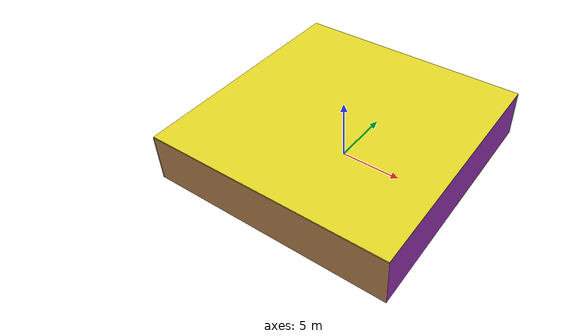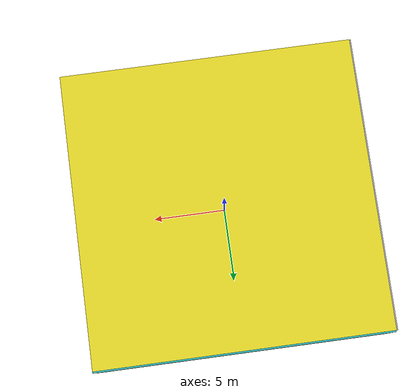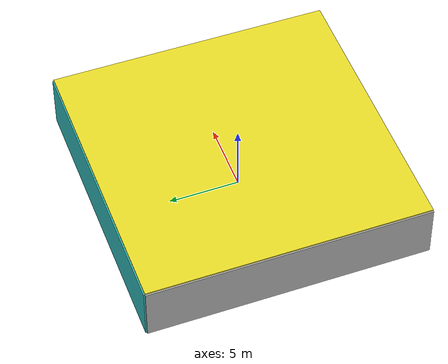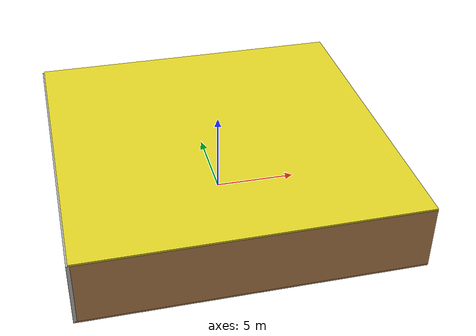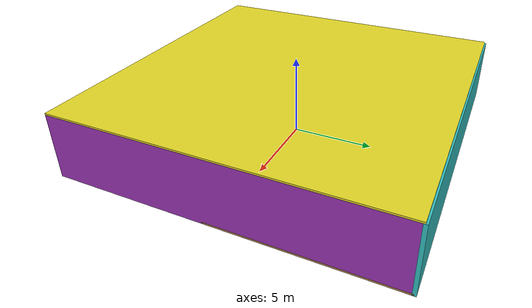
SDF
<sdf version="1.4">
 <world name="default">
  <physics type="ode">
   <max_step_size>0.001</max_step_size>
   <real_time_factor>1</real_time_factor>
   <real_time_update_rate>1000</real_time_update_rate>
   <gravity>0 0 -9.8</gravity>
  </physics>
  <scene><ambient>0.4 0.4 0.4 1</ambient><background>0.7 0.7 0.7 1</background><shadows>1</shadows></scene>
  <model name="Surrounding">
   <static>1</static>
   <link name="Ceiling">
    <collision name="Ceiling_Collision"><geometry><box><size>20 20 0.1</size></box></geometry></collision>
    <visual name="Ceiling_Visual">
     <geometry><box><size>20 20 0.1</size></box></geometry>
     <material>
      <script><uri>file://media/materials/scripts/gazebo.material</uri><name>Gazebo/Yellow</name></script>
     </material>
    </visual>
    <pose>0 0 4.05 0 0 0</pose>
   </link>
   <link name="Wall_South">
    <collision name="Wall_South_Collision">
     <geometry><box><size>20 0 4</size></box></geometry>
     <pose>0 0 2 0 -0 0</pose>
    </collision>
    <visual name="Wall_South_Visual">
     <pose>0 0 2 0 -0 0</pose>
     <geometry><box><size>20 0 4</size></box></geometry>
     <material>
      <script><uri>file://media/materials/scripts/gazebo.material</uri><name>Gazebo/WoodFloor</name></script>
     </material>
    </visual>
    <velocity_decay><linear>0</linear><angular>0</angular></velocity_decay>
    <pose>0 -10 0 0 -0 0</pose>
   </link>
   <link name="Wall_East">
    <collision name="Wall_21_Collision">
     <geometry><box><size>20 0 4</size></box></geometry>
     <pose>0 0 2 0 -0 0</pose>
    </collision>
    <visual name="Wall_21_Visual">
     <pose>0 0 2 0 -0 0</pose>
     <geometry><box><size>20 0 4</size></box></geometry>
     <material>
      <script><uri>file://media/materials/scripts/gazebo.material</uri><name>Gazebo/Purple</name></script>
     </material>
    </visual>
    <velocity_decay><linear>0</linear><angular>0</angular></velocity_decay>
    <pose>10 0 0 0 -0 1.5708</pose>
   </link>
   <link name="Wall_North">
    <collision name="Wall_22_Collision">
     <geometry><box><size>20 0.2 4</size></box></geometry>
     <pose>0 0 2 0 -0 0</pose>
    </collision>
    <visual name="Wall_22_Visual">
     <pose>0 0 2 0 -0 0</pose>
     <geometry><box><size>20 0.2 4</size></box></geometry>
     <material>
      <script><uri>file://media/materials/scripts/gazebo.material</uri><name>Gazebo/Turquoise</name></script>
     </material>
    </visual>
    <velocity_decay><linear>0</linear><angular>0</angular></velocity_decay>
    <pose>0 10 0 0 -0 0</pose>
   </link>
   <link name="Wall_West">
    <collision name="Wall_23_Collision">
     <geometry><box><size>20 0.2 4</size></box></geometry>
     <pose>0 0 2 0 -0 0</pose>
    </collision>
    <visual name="Wall_23_Visual">
     <pose>0 0 2 0 -0 0</pose>
     <geometry><box><size>20 0.2 4</size></box></geometry>
     <material>
      <script><uri>file://media/materials/scripts/gazebo.material</uri><name>Gazebo/LightOn</name></script>
     </material>
    </visual>
    <velocity_decay><linear>0</linear><angular>0</angular></velocity_decay>
    <pose>-10 0 0 0 0 -1.5708</pose>
   </link>
   <link name="Ground_link">
    <collision name="collision">
     <pose>0 0 .05 0 -0 0</pose>
     <geometry><box><size>20 20 0.1</size></box></geometry>
    </collision>
    <visual name="visual">
     <pose>0 0 .05 0 -0 0</pose>
     <geometry><box><size>20 20 0.1</size></box></geometry>
     <material>
      <script><uri>file://media/materials/scripts/gazebo.material</uri><name>Gazebo/Wood</name></script>
     </material>
    </visual>
   </link>
   <static>1</static>
  </model>
  <spherical_coordinates>
   <surface_model>EARTH_WGS84</surface_model>
   <latitude_deg>0</latitude_deg>
   <longitude_deg>0</longitude_deg>
   <elevation>0</elevation>
   <heading_deg>0</heading_deg>
  </spherical_coordinates>
  <light name="lightball_0" type="diffuse">
   <diffuse>0.8 0.8 0.8 1</diffuse>
   <specular>0.2 0.2 0.2 1</specular>
   <attenuation>
    <range>100</range>
    <constant>0.7</constant>
    <linear>0.01</linear>
    <quadratic>0.001</quadratic>
   </attenuation>
   <direction>-0.5 0.1 -0.9</direction>
   <pose>-2.57107411492 0.0539238730481 0.574774533235 0 0 0</pose>
  </light>
  <light name="lightball_1" type="diffuse">
   <diffuse>0.8 0.8 0.8 1</diffuse>
   <specular>0.2 0.2 0.2 1</specular>
   <attenuation>
    <range>100</range>
    <constant>0.7</constant>
    <linear>0.01</linear>
    <quadratic>0.001</quadratic>
   </attenuation>
   <direction>-0.5 0.1 -0.9</direction>
   <pose>-2.06349050627 1.81055202269 2.60264054998 0 0 0</pose>
  </light>
  <light name="lightball_2" type="diffuse">
   <diffuse>0.8 0.8 0.8 1</diffuse>
   <specular>0.2 0.2 0.2 1</specular>
   <attenuation>
    <range>100</range>
    <constant>0.7</constant>
    <linear>0.01</linear>
    <quadratic>0.001</quadratic>
   </attenuation>
   <direction>-0.5 0.1 -0.9</direction>
   <pose>-3.84301677924 -5.76139441115 3.27269588971 0 0 0</pose>
  </light>
  <light name="lightball_3" type="diffuse">
   <diffuse>0.8 0.8 0.8 1</diffuse>
   <specular>0.2 0.2 0.2 1</specular>
   <attenuation>
    <range>100</range>
    <constant>0.7</constant>
    <linear>0.01</linear>
    <quadratic>0.001</quadratic>
   </attenuation>
   <direction>-0.5 0.1 -0.9</direction>
   <pose>3.20793836698 9.40950172264 2.39246982382 0 0 0</pose>
  </light>
  <light name="lightball_4" type="diffuse">
   <diffuse>0.8 0.8 0.8 1</diffuse>
   <specular>0.2 0.2 0.2 1</specular>
   <attenuation>
    <range>100</range>
    <constant>0.7</constant>
    <linear>0.01</linear>
    <quadratic>0.001</quadratic>
   </attenuation>
   <direction>-0.5 0.1 -0.9</direction>
   <pose>0.405906826337 7.60315793308 3.87278489859 0 0 0</pose>
  </light>
  <light name="lightball_5" type="diffuse">
   <diffuse>0.8 0.8 0.8 1</diffuse>
   <specular>0.2 0.2 0.2 1</specular>
   <attenuation>
    <range>100</range>
    <constant>0.7</constant>
    <linear>0.01</linear>
    <quadratic>0.001</quadratic>
   </attenuation>
   <direction>-0.5 0.1 -0.9</direction>
   <pose>-7.84900923356 -9.89021369121 0.538686987662 0 0 0</pose>
  </light>
  <light name="lightball_6" type="diffuse">
   <diffuse>0.8 0.8 0.8 1</diffuse>
   <specular>0.2 0.2 0.2 1</specular>
   <attenuation>
    <range>100</range>
    <constant>0.7</constant>
    <linear>0.01</linear>
    <quadratic>0.001</quadratic>
   </attenuation>
   <direction>-0.5 0.1 -0.9</direction>
   <pose>2.8088363927 -7.11242139644 0.519994847397 0 0 0</pose>
  </light>
  <light name="lightball_7" type="diffuse">
   <diffuse>0.8 0.8 0.8 1</diffuse>
   <specular>0.2 0.2 0.2 1</specular>
   <attenuation>
    <range>100</range>
    <constant>0.7</constant>
    <linear>0.01</linear>
    <quadratic>0.001</quadratic>
   </attenuation>
   <direction>-0.5 0.1 -0.9</direction>
   <pose>-8.43806721217 -1.00869225763 0.671018450344 0 0 0</pose>
  </light>
  <light name="lightball_8" type="diffuse">
   <diffuse>0.8 0.8 0.8 1</diffuse>
   <specular>0.2 0.2 0.2 1</specular>
   <attenuation>
    <range>100</range>
    <constant>0.7</constant>
    <linear>0.01</linear>
    <quadratic>0.001</quadratic>
   </attenuation>
   <direction>-0.5 0.1 -0.9</direction>
   <pose>-8.6270519405 -9.68512313655 1.03939882221 0 0 0</pose>
  </light>
  <include><uri>model://table</uri><pose>3.94284970046 4.43554414915 0 0 0 1.06459578713</pose></include>
  <include>
   <uri>model://construction_cone</uri>
   <pose>6.9573239635 -7.0907668083 0 0 0 1.33701218961</pose>
  </include>
  <include><uri>model://cabinet</uri><pose>6.77000196983 -4.67704537641 0 0 0 2.37277732397</pose></include>
  <include>
   <uri>model://robocup_3Dsim_goal</uri>
   <pose>7.11252772985 4.35062280376 0 0 0 2.15664866742</pose>
  </include>
 </world>
</sdf>

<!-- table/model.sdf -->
<sdf version="1.5">
  <model name="table">
    <static>true</static>
    <link name="link">
      <collision name="surface">
        <pose>0 0 1.0 0 0 0</pose>
        <geometry>
          <box>
            <size>1.5 0.8 0.03</size>
          </box>
        </geometry>
        <surface>
          <friction>
            <ode>
              <mu>0.6</mu>
              <mu2>0.6</mu2>
            </ode>
          </friction>
        </surface>
      </collision>
      <visual name="visual1">
        <pose>0 0 1.0 0 0 0</pose>
        <geometry>
          <box>
            <size>1.5 0.8 0.03</size>
          </box>
        </geometry>
        <material>
          <script>
            <uri>model://media/materials/scripts/gazebo.material</uri>
            <name>Gazebo/Wood</name>
          </script>
        </material>
      </visual>
      <collision name="front_left_leg">
        <pose>0.68 0.38 0.5 0 0 0</pose>
        <geometry>
          <cylinder>
            <radius>0.02</radius>
            <length>1.0</length>
          </cylinder>
        </geometry>
      </collision>
      <visual name="front_left_leg">
        <pose>0.68 0.38 0.5 0 0 0</pose>
        <geometry>
          <cylinder>
            <radius>0.02</radius>
            <length>1.0</length>
          </cylinder>
        </geometry>
        <material>
          <script>
            <uri>model://media/materials/scripts/gazebo.material</uri>
            <name>Gazebo/Grey</name>
          </script>
        </material>
      </visual>
      <collision name="front_right_leg">
        <pose>0.68 -0.38 0.5 0 0 0</pose>
        <geometry>
          <cylinder>
            <radius>0.02</radius>
            <length>1.0</length>
          </cylinder>
        </geometry>
      </collision>
      <visual name="front_right_leg">
        <pose>0.68 -0.38 0.5 0 0 0</pose>
        <geometry>
          <cylinder>
            <radius>0.02</radius>
            <length>1.0</length>
          </cylinder>
        </geometry>
        <material>
          <script>
            <uri>model://media/materials/scripts/gazebo.material</uri>
            <name>Gazebo/Grey</name>
          </script>
        </material>
      </visual>
      <collision name="back_right_leg">
        <pose>-0.68 -0.38 0.5 0 0 0</pose>
        <geometry>
          <cylinder>
            <radius>0.02</radius>
            <length>1.0</length>
          </cylinder>
        </geometry>
      </collision>
      <visual name="back_right_leg">
        <pose>-0.68 -0.38 0.5 0 0 0</pose>
        <geometry>
          <cylinder>
            <radius>0.02</radius>
            <length>1.0</length>
          </cylinder>
        </geometry>
        <material>
          <script>
            <uri>model://media/materials/scripts/gazebo.material</uri>
            <name>Gazebo/Grey</name>
          </script>
        </material>
      </visual>
      <collision name="back_left_leg">
        <pose>-0.68 0.38 0.5 0 0 0</pose>
        <geometry>
          <cylinder>
            <radius>0.02</radius>
            <length>1.0</length>
          </cylinder>
        </geometry>
      </collision>
      <visual name="back_left_leg">
        <pose>-0.68 0.38 0.5 0 0 0</pose>
        <geometry>
          <cylinder>
            <radius>0.02</radius>
            <length>1.0</length>
          </cylinder>
        </geometry>
        <material>
          <script>
            <uri>model://media/materials/scripts/gazebo.material</uri>
            <name>Gazebo/Grey</name>
          </script>
        </material>
      </visual>
    </link>
  </model>
</sdf>

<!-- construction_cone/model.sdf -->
<sdf version="1.5">
  <model name="Construction Cone">
    <link name="link">
      <collision name="collision">
        <geometry>
          <mesh>
            <scale>10 10 10</scale>
            <uri>file://isr-testbed/construction_cone/meshes/construction_cone.dae</uri>
          </mesh>
        </geometry>
      </collision>
      <visual name="visual">
        <geometry>
          <mesh>
            <scale>10 10 10</scale>
            <uri>file://isr-testbed/construction_cone/meshes/construction_cone.dae</uri>
          </mesh>
        </geometry>
      </visual>
    </link>
  </model>
</sdf>

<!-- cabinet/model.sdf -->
<sdf version="1.5">
  <model name="cabinet">
    <static>true</static>
    <link name="cabinet_bottom_plate">
      <inertial>
        <pose>0 0 -1 0 0 0</pose>
        <inertia>
          <ixx>2.050000</ixx>
          <ixy>0</ixy>
          <ixz>0</ixz>
          <iyy>2.050000</iyy>
          <iyz>0</iyz>
          <izz>2.050000</izz>
        </inertia>
        <mass>25.000000</mass>
      </inertial>
      <collision name="cabinet_bottom_plate_geom">
        <pose>0 0 0.010000 0 0 0</pose>
        <geometry>
          <box>
            <size>0.450000 0.450000 0.020000</size>
          </box>
        </geometry>
      </collision>
      <visual name="cabinet_bottom_plate_geom_visual">
        <pose>0 0 0.010000 0 0 0</pose>
        <geometry>
          <box>
            <size>0.450000 0.450000 0.020000</size>
          </box>
        </geometry>
        <material>
          <script>
            <uri>model://media/materials/scripts/gazebo.material</uri>
            <name>Gazebo/Wood</name>
          </script>
        </material>
      </visual>
      <collision name="cabinet_bottom_plate_geom_cabinet_back_plate">
        <pose>0.235000 0 0.510000 0 0 0</pose>
        <geometry>
          <box>
            <size>0.020000 0.450000 1.020000</size>
          </box>
        </geometry>
      </collision>
      <visual name="cabinet_bottom_plate_geom_cabinet_back_plate_visual">
        <pose>0.235000 0 0.510000 0 0 0</pose>
        <geometry>
          <box>
            <size>0.020000 0.450000 1.020000</size>
          </box>
        </geometry>
        <material>
          <script>
            <uri>model://media/materials/scripts/gazebo.material</uri>
            <name>Gazebo/Wood</name>
          </script>
        </material>
      </visual>
      <collision name="cabinet_bottom_plate_geom_cabinet_left_plate">
        <pose>0 0.235000 0.510000 0 0 0</pose>
        <geometry>
          <box>
            <size>0.450000 0.020000 1.020000</size>
          </box>
        </geometry>
      </collision>
      <visual name="cabinet_bottom_plate_geom_cabinet_left_plate_visual">
        <pose>0 0.235000 0.510000 0 0 0</pose>
        <geometry>
          <box>
            <size>0.450000 0.020000 1.020000</size>
          </box>
        </geometry>
        <material>
          <script>
            <uri>model://media/materials/scripts/gazebo.material</uri>
            <name>Gazebo/Wood</name>
          </script>
        </material>
      </visual>
      <collision name="cabinet_bottom_plate_geom_cabinet_middle_plate">
        <pose>0 0 0.510000 0 0 0</pose>
        <geometry>
          <box>
            <size>0.450000 0.450000 0.020000</size>
          </box>
        </geometry>
      </collision>
      <visual name="cabinet_bottom_plate_geom_cabinet_middle_plate_visual">
        <pose>0 0 0.510000 0 0 0</pose>
        <geometry>
          <box>
            <size>0.450000 0.450000 0.020000</size>
          </box>
        </geometry>
        <material>
          <script>
            <uri>model://media/materials/scripts/gazebo.material</uri>
            <name>Gazebo/Wood</name>
          </script>
        </material>
      </visual>
      <collision name="cabinet_bottom_plate_geom_cabinet_right_plate">
        <pose>0 -0.235000 0.510000 0 0 0</pose>
        <geometry>
          <box>
            <size>0.450000 0.020000 1.020000</size>
          </box>
        </geometry>
      </collision>
      <visual name="cabinet_bottom_plate_geom_cabinet_right_plate_visual">
        <pose>0 -0.235000 0.510000 0 0 0</pose>
        <geometry>
          <box>
            <size>0.450000 0.020000 1.020000</size>
          </box>
        </geometry>
        <material>
          <script>
            <uri>model://media/materials/scripts/gazebo.material</uri>
            <name>Gazebo/Wood</name>
          </script>
        </material>
      </visual>
      <collision name="cabinet_bottom_plate_geom_cabinet_top_plate">
        <pose>0 0 1.010000 0 0 0</pose>
        <geometry>
          <box>
            <size>0.450000 0.450000 0.020000</size>
          </box>
        </geometry>
      </collision>
      <visual name="cabinet_bottom_plate_geom_cabinet_top_plate_visual">
        <pose>0 0 1.010000 0 0 0</pose>
        <geometry>
          <box>
            <size>0.450000 0.450000 0.020000</size>
          </box>
        </geometry>
        <material>
          <script>
            <uri>model://media/materials/scripts/gazebo.material</uri>
            <name>Gazebo/Wood</name>
          </script>
        </material>
      </visual>
    </link>
  </model>
</sdf>

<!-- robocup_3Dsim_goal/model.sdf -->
<sdf version="1.5">
  <model name="robocup_3d_goal">
    <static>true</static>
    <link name="left_post">
      <pose>0 1.05 0.45 0 0 0</pose>
      <collision name="collision">
        <geometry>
          <cylinder>
            <radius>0.05</radius>
            <length>0.9</length>
          </cylinder>
        </geometry>
      </collision>
      <visual name="visual">
        <geometry>
          <cylinder>
            <radius>0.05</radius>
            <length>0.9</length>
          </cylinder>
        </geometry>
        <material>
          <script>
            <uri>file://media/materials/scripts/gazebo.material</uri>
            <name>Gazebo/ZincYellow</name>
          </script>
        </material>
      </visual>
    </link>
    <link name="left_support_horiz_lower">
      <pose>0.30 1.05 0.01 0 0 0</pose>
      <collision name="collision">
        <geometry>
          <box>
            <size>0.50 0.02 0.02</size>
          </box>
        </geometry>
      </collision>
      <visual name="visual">
        <geometry>
          <box>
            <size>0.50 0.02 0.02</size>
          </box>
        </geometry>
        <material>
          <script>
            <uri>file://media/materials/scripts/gazebo.material</uri>
            <name>Gazebo/White</name>
          </script>
        </material>
      </visual>
    </link>
    <link name="left_support_horiz_upper">
      <pose>0.30 1.05 0.79 0 0 0</pose>
      <collision name="collision">
        <geometry>
          <box>
            <size>0.50 0.02 0.02</size>
          </box>
        </geometry>
      </collision>
      <visual name="visual">
        <geometry>
          <box>
            <size>0.50 0.02 0.02</size>
          </box>
        </geometry>
        <material>
          <script>
            <uri>file://media/materials/scripts/gazebo.material</uri>
            <name>Gazebo/White</name>
          </script>
        </material>
      </visual>
    </link>
    <link name="left_support_vertical">
      <pose>0.56 1.05 0.4 0 1.5708 0</pose>
      <collision name="collision">
        <geometry>
          <box>
            <size>0.80 0.02 0.02</size>
          </box>
        </geometry>
      </collision>
      <visual name="visual">
        <geometry>
          <box>
            <size>0.80 0.02 0.02</size>
          </box>
        </geometry>
        <material>
          <script>
            <uri>file://media/materials/scripts/gazebo.material</uri>
            <name>Gazebo/White</name>
          </script>
        </material>
      </visual>
    </link>
    <link name="right_support_horiz_lower">
      <pose>0.30 -1.05 0.01 0 0 0</pose>
      <collision name="collision">
        <geometry>
          <box>
            <size>0.50 0.02 0.02</size>
          </box>
        </geometry>
      </collision>
      <visual name="visual">
        <geometry>
          <box>
            <size>0.50 0.02 0.02</size>
          </box>
        </geometry>
        <material>
          <script>
            <uri>file://media/materials/scripts/gazebo.material</uri>
            <name>Gazebo/White</name>
          </script>
        </material>
      </visual>
    </link>
    <link name="right_support_horiz_upper">
      <pose>0.30 -1.05 0.79 0 0 0</pose>
      <collision name="collision">
        <geometry>
          <box>
            <size>0.50 0.02 0.02</size>
          </box>
        </geometry>
      </collision>
      <visual name="visual">
        <geometry>
          <box>
            <size>0.50 0.02 0.02</size>
          </box>
        </geometry>
        <material>
          <script>
            <uri>file://media/materials/scripts/gazebo.material</uri>
            <name>Gazebo/White</name>
          </script>
        </material>
      </visual>
    </link>
    <link name="right_support_vertical">
      <pose>0.56 -1.05 0.4 0 1.5708 0</pose>
      <collision name="collision">
        <geometry>
          <box>
            <size>0.80 0.02 0.02</size>
          </box>
        </geometry>
      </collision>
      <visual name="visual">
        <geometry>
          <box>
            <size>0.80 0.02 0.02</size>
          </box>
        </geometry>
        <material>
          <script>
            <uri>file://media/materials/scripts/gazebo.material</uri>
            <name>Gazebo/White</name>
          </script>
        </material>
      </visual>
    </link>
    <link name="center_support_horiz_lower">
      <pose>0.56 0 0.01 0 1.5708 0</pose>
      <collision name="collision">
        <geometry>
          <box>
            <size>0.02 2.08 0.02</size>
          </box>
        </geometry>
      </collision>
      <visual name="visual">
        <geometry>
          <box>
            <size>0.02 2.08 0.02</size>
          </box>
        </geometry>
        <material>
          <script>
            <uri>file://media/materials/scripts/gazebo.material</uri>
            <name>Gazebo/White</name>
          </script>
        </material>
      </visual>
    </link>
    <link name="center_support_horiz_upper">
      <pose>0.56 0 0.79 0 1.5708 0</pose>
      <collision name="collision">
        <geometry>
          <box>
            <size>0.02 2.08 0.02</size>
          </box>
        </geometry>
      </collision>
      <visual name="visual">
        <geometry>
          <box>
            <size>0.02 2.08 0.02</size>
          </box>
        </geometry>
        <material>
          <script>
            <uri>file://media/materials/scripts/gazebo.material</uri>
            <name>Gazebo/White</name>
          </script>
        </material>
      </visual>
    </link>
    <link name="right_post">
      <pose>0 -1.05 0.45 0 0 0</pose>
      <collision name="collision">
        <geometry>
          <cylinder>
            <radius>0.05</radius>
            <length>0.9</length>
          </cylinder>
        </geometry>
      </collision>
      <visual name="visual">
        <geometry>
          <cylinder>
            <radius>0.05</radius>
            <length>0.9</length>
          </cylinder>
        </geometry>
        <material>
          <script>
            <uri>file://media/materials/scripts/gazebo.material</uri>
            <name>Gazebo/ZincYellow</name>
          </script>
        </material>
      </visual>
    </link>
    <link name="crossbar">
      <pose>0 0 0.85 1.57 1.57 0</pose>
      <collision name="collision">
        <geometry>
          <cylinder>
            <radius>0.05</radius>
            <length>2.0</length>
          </cylinder>
        </geometry>
      </collision>
      <visual name="visual">
        <geometry>
          <cylinder>
            <radius>0.05</radius>
            <length>2.0</length>
          </cylinder>
        </geometry>
        <material>
          <script>
            <uri>file://media/materials/scripts/gazebo.material</uri>
            <name>Gazebo/ZincYellow</name>
          </script>
        </material>
      </visual>
    </link>
    <link name="center_net">
      <pose>0.56 0 0.40 0 0 0</pose>
      <collision name="collision">
        <geometry>
          <box>
            <size>0.01 2.1 0.80</size>
          </box>
        </geometry>
      </collision>
      <visual name="visual">
        <geometry>
          <box>
            <size>0.01 2.1 0.80</size>
          </box>
        </geometry>
        <material>
          <script>
            <uri>model://../model_source/models/robocup09_spl_field/materials/scripts/</uri>
            <uri>model://../model_source/models/robocup09_spl_field/materials/textures/</uri>
            <name>RoboCup/Net</name>
          </script>
        </material>
      </visual>
    </link>
    <link name="left_net">
      <pose>0.30 1.05 0.40 0 0 0</pose>
      <collision name="collision">
        <geometry>
          <box>
            <size>0.50 0.01 0.76</size>
          </box>
        </geometry>
      </collision>
      <visual name="visual">
        <geometry>
          <box>
            <size>0.50 0.01 0.76</size>
          </box>
        </geometry>
        <material>
          <script>
            <uri>model://../model_source/models/robocup09_spl_field/materials/scripts/</uri>
            <uri>model://../model_source/models/robocup09_spl_field/materials/textures/</uri>
            <name>RoboCup/Net</name>
          </script>
        </material>
      </visual>
    </link>
    <link name="right_net">
      <pose>0.30 -1.05 0.40 0 0 0</pose>
      <collision name="collision">
        <geometry>
          <box>
            <size>0.50 0.01 0.76</size>
          </box>
        </geometry>
      </collision>
      <visual name="visual">
        <geometry>
          <box>
            <size>0.50 0.01 0.76</size>
          </box>
        </geometry>
        <material>
          <script>
            <uri>model://../model_source/models/robocup09_spl_field/materials/scripts/</uri>
            <uri>model://../model_source/models/robocup09_spl_field/materials/textures/</uri>
            <name>RoboCup/Net</name>
          </script>
        </material>
      </visual>
    </link>
  </model>
</sdf>
